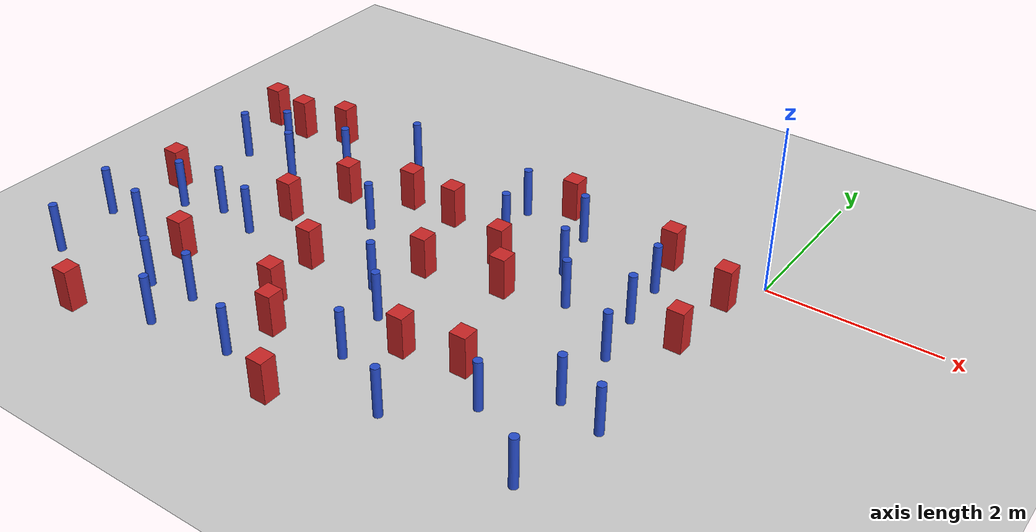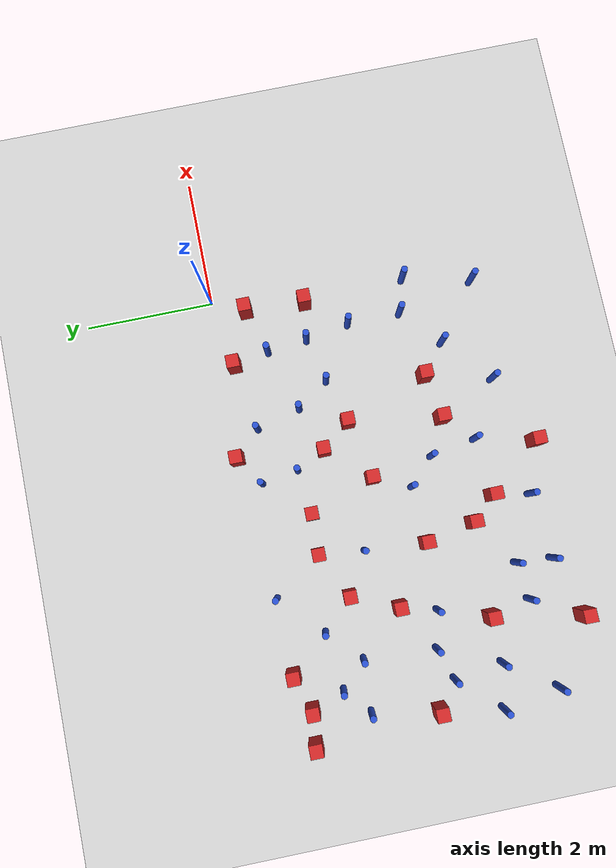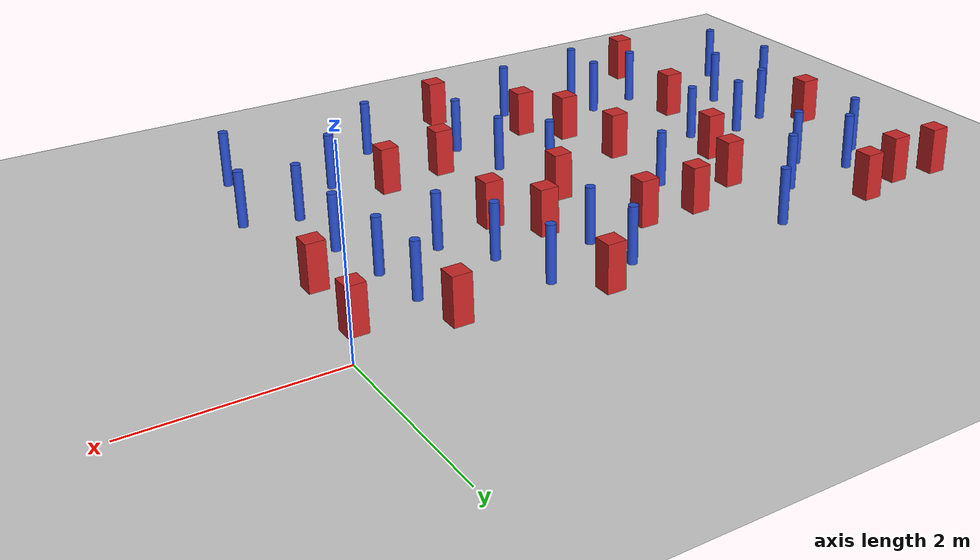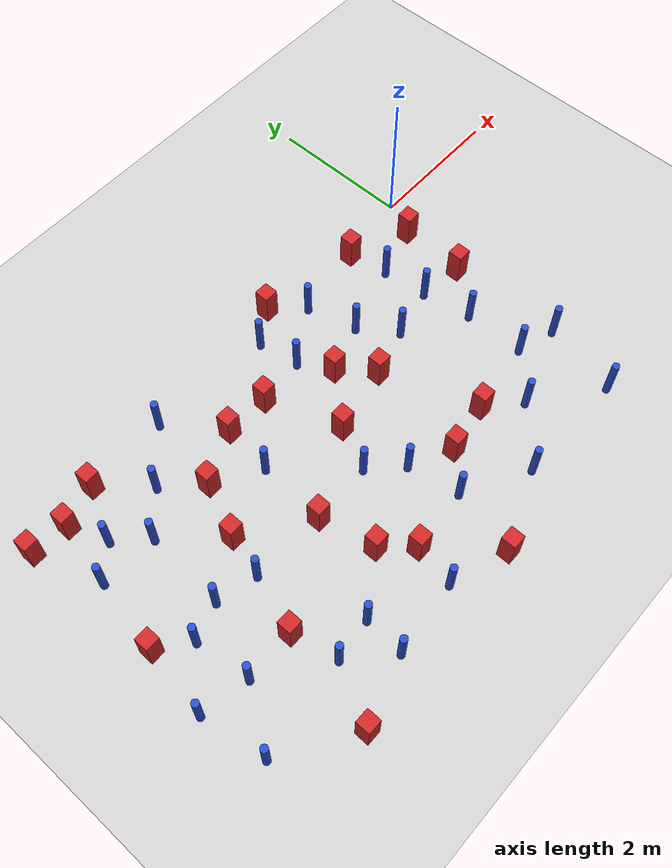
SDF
<sdf version="1.6">
 <world name="default">
  <model name="ground_plane">
   <static>1</static>
   <link name="link">
    <collision name="collision">
     <geometry><plane><normal>0 0 1</normal><size>100 100</size></plane></geometry>
     <surface><friction><ode><mu>100</mu><mu2>50</mu2></ode></friction></surface>
    </collision>
    <visual name="visual">
     <cast_shadows>0</cast_shadows>
     <geometry><plane><normal>0 0 1</normal><size>100 100</size></plane></geometry>
     <material>
      <ambient>1.0 1.0 1.0 1.0</ambient>
      <diffuse>0.8 0.8 0.8 1.0</diffuse>
      <specular>0.01 0.01 0.01 1.000000</specular>
     </material>
    </visual>
   </link>
  </model>
  <model name="pole_obstacle8">
   <static>true</static>
   <pose>-5.93918956181 -2.33999998546 -3.09024884793e-07 -7.19054271912e-07 -2.11315075144e-07 -1.93935509269e-07</pose>
   <link name="link">
    <pose>0 0 0.3 0 -0 0</pose>
    <inertial>
     <mass>1</mass>
     <inertia><ixx>0.145833</ixx><ixy>0</ixy><ixz>0</ixz><iyy>0.145833</iyy><iyz>0</iyz><izz>0.125</izz></inertia>
    </inertial>
    <collision name="collision">
     <geometry><cylinder><radius>0.05</radius><length>.6</length></cylinder></geometry>
    </collision>
    <visual name="visual">
     <geometry><cylinder><radius>0.05</radius><length>.6</length></cylinder></geometry>
     <material>
      <script><name>Gazebo/Blue</name><uri>file://media/materials/scripts/gazebo.material</uri></script>
     </material>
    </visual>
   </link>
  </model>
  <model name="pole_obstacle11">
   <static>true</static>
   <pose>-1.35940231478 -3.42042339917 -3.09024884793e-07 -7.19054271912e-07 -2.11315075132e-07 -1.93935509263e-07</pose>
   <link name="link">
    <pose>0 0 0.3 0 -0 0</pose>
    <inertial>
     <mass>1</mass>
     <inertia><ixx>0.145833</ixx><ixy>0</ixy><ixz>0</ixz><iyy>0.145833</iyy><iyz>0</iyz><izz>0.125</izz></inertia>
    </inertial>
    <collision name="collision">
     <geometry><cylinder><radius>0.05</radius><length>.6</length></cylinder></geometry>
    </collision>
    <visual name="visual">
     <geometry><cylinder><radius>0.05</radius><length>.6</length></cylinder></geometry>
     <material>
      <script><name>Gazebo/Blue</name><uri>file://media/materials/scripts/gazebo.material</uri></script>
     </material>
    </visual>
   </link>
  </model>
  <model name="square_post_obstacle9">
   <static>true</static>
   <pose>-4.35657237711 -2.52796348364 -4.36207812815e-07 3.75137919937e-06 9.77721102514e-07 2.47381364184e-05</pose>
   <link name="link">
    <pose>0 0 0.25 0 -0 0</pose>
    <inertial>
     <mass>100</mass>
     <inertia>
      <ixx>0.166667</ixx>
      <ixy>0</ixy>
      <ixz>0</ixz>
      <iyy>0.166667</iyy>
      <iyz>0</iyz>
      <izz>0.166667</izz>
     </inertia>
    </inertial>
    <collision name="collision"><geometry><box><size>.2 .2 .5</size></box></geometry></collision>
    <visual name="visual">
     <geometry><box><size>.2 .2 .5</size></box></geometry>
     <material>
      <script><name>Gazebo/Red</name><uri>file://media/materials/scripts/gazebo.material</uri></script>
     </material>
    </visual>
   </link>
  </model>
  <model name="pole_obstacle15">
   <static>true</static>
   <pose>-0.971050479498 -0.724261945991 -3.09024884793e-07 -7.19054271912e-07 -2.11315075132e-07 -1.93935509265e-07</pose>
   <link name="link">
    <pose>0 0 0.3 0 -0 0</pose>
    <inertial>
     <mass>1</mass>
     <inertia><ixx>0.145833</ixx><ixy>0</ixy><ixz>0</ixz><iyy>0.145833</iyy><iyz>0</iyz><izz>0.125</izz></inertia>
    </inertial>
    <collision name="collision">
     <geometry><cylinder><radius>0.05</radius><length>.6</length></cylinder></geometry>
    </collision>
    <visual name="visual">
     <geometry><cylinder><radius>0.05</radius><length>.6</length></cylinder></geometry>
     <material>
      <script><name>Gazebo/Blue</name><uri>file://media/materials/scripts/gazebo.material</uri></script>
     </material>
    </visual>
   </link>
  </model>
  <model name="pole_obstacle20">
   <static>true</static>
   <pose>-2.08037863311 -4.06417941965 -3.09024884793e-07 -7.19054271912e-07 -2.11315075134e-07 -1.93935509266e-07</pose>
   <link name="link">
    <pose>0 0 0.3 0 -0 0</pose>
    <inertial>
     <mass>1</mass>
     <inertia><ixx>0.145833</ixx><ixy>0</ixy><ixz>0</ixz><iyy>0.145833</iyy><iyz>0</iyz><izz>0.125</izz></inertia>
    </inertial>
    <collision name="collision">
     <geometry><cylinder><radius>0.05</radius><length>.6</length></cylinder></geometry>
    </collision>
    <visual name="visual">
     <geometry><cylinder><radius>0.05</radius><length>.6</length></cylinder></geometry>
     <material>
      <script><name>Gazebo/Blue</name><uri>file://media/materials/scripts/gazebo.material</uri></script>
     </material>
    </visual>
   </link>
  </model>
  <model name="pole_obstacle23">
   <static>true</static>
   <pose>-2.98593588228 -0.246114821247 -3.09024884848e-07 -7.19054271902e-07 -2.11315075197e-07 -1.93935509286e-07</pose>
   <link name="link">
    <pose>0 0 0.3 0 -0 0</pose>
    <inertial>
     <mass>1</mass>
     <inertia><ixx>0.145833</ixx><ixy>0</ixy><ixz>0</ixz><iyy>0.145833</iyy><iyz>0</iyz><izz>0.125</izz></inertia>
    </inertial>
    <collision name="collision">
     <geometry><cylinder><radius>0.05</radius><length>.6</length></cylinder></geometry>
    </collision>
    <visual name="visual">
     <geometry><cylinder><radius>0.05</radius><length>.6</length></cylinder></geometry>
     <material>
      <script><name>Gazebo/Blue</name><uri>file://media/materials/scripts/gazebo.material</uri></script>
     </material>
    </visual>
   </link>
  </model>
  <model name="square_post_obstacle18">
   <static>true</static>
   <pose>-3.59340045973 -0.903898061147 -4.36207812815e-07 3.75137919937e-06 9.77721102514e-07 2.47381364184e-05</pose>
   <link name="link">
    <pose>0 0 0.25 0 -0 0</pose>
    <inertial>
     <mass>100</mass>
     <inertia>
      <ixx>0.166667</ixx>
      <ixy>0</ixy>
      <ixz>0</ixz>
      <iyy>0.166667</iyy>
      <iyz>0</iyz>
      <izz>0.166667</izz>
     </inertia>
    </inertial>
    <collision name="collision"><geometry><box><size>.2 .2 .5</size></box></geometry></collision>
    <visual name="visual">
     <geometry><box><size>.2 .2 .5</size></box></geometry>
     <material>
      <script><name>Gazebo/Red</name><uri>file://media/materials/scripts/gazebo.material</uri></script>
     </material>
    </visual>
   </link>
  </model>
  <model name="pole_obstacle24">
   <static>true</static>
   <pose>-4.92612174101 -3.79418922728 -3.09024884793e-07 -7.19054271912e-07 -2.11315075144e-07 -1.93935509269e-07</pose>
   <link name="link">
    <pose>0 0 0.3 0 -0 0</pose>
    <inertial>
     <mass>1</mass>
     <inertia><ixx>0.145833</ixx><ixy>0</ixy><ixz>0</ixz><iyy>0.145833</iyy><iyz>0</iyz><izz>0.125</izz></inertia>
    </inertial>
    <collision name="collision">
     <geometry><cylinder><radius>0.05</radius><length>.6</length></cylinder></geometry>
    </collision>
    <visual name="visual">
     <geometry><cylinder><radius>0.05</radius><length>.6</length></cylinder></geometry>
     <material>
      <script><name>Gazebo/Blue</name><uri>file://media/materials/scripts/gazebo.material</uri></script>
     </material>
    </visual>
   </link>
  </model>
  <model name="pole_obstacle28">
   <static>true</static>
   <pose>-5.37671411241 -0.752074949718 -3.09024884793e-07 -7.19054271912e-07 -2.11315075134e-07 -1.93935509265e-07</pose>
   <link name="link">
    <pose>0 0 0.3 0 -0 0</pose>
    <inertial>
     <mass>1</mass>
     <inertia><ixx>0.145833</ixx><ixy>0</ixy><ixz>0</ixz><iyy>0.145833</iyy><iyz>0</iyz><izz>0.125</izz></inertia>
    </inertial>
    <collision name="collision">
     <geometry><cylinder><radius>0.05</radius><length>.6</length></cylinder></geometry>
    </collision>
    <visual name="visual">
     <geometry><cylinder><radius>0.05</radius><length>.6</length></cylinder></geometry>
     <material>
      <script><name>Gazebo/Blue</name><uri>file://media/materials/scripts/gazebo.material</uri></script>
     </material>
    </visual>
   </link>
  </model>
  <model name="square_post_obstacle22">
   <static>true</static>
   <pose>-0.294631532423 -1.43798878505 -4.36207812815e-07 3.75137919937e-06 9.77721102514e-07 2.47381364184e-05</pose>
   <link name="link">
    <pose>0 0 0.25 0 -0 0</pose>
    <inertial>
     <mass>100</mass>
     <inertia>
      <ixx>0.166667</ixx>
      <ixy>0</ixy>
      <ixz>0</ixz>
      <iyy>0.166667</iyy>
      <iyz>0</iyz>
      <izz>0.166667</izz>
     </inertia>
    </inertial>
    <collision name="collision"><geometry><box><size>.2 .2 .5</size></box></geometry></collision>
    <visual name="visual">
     <geometry><box><size>.2 .2 .5</size></box></geometry>
     <material>
      <script><name>Gazebo/Red</name><uri>file://media/materials/scripts/gazebo.material</uri></script>
     </material>
    </visual>
   </link>
  </model>
  <model name="pole_obstacle37">
   <static>true</static>
   <pose>-2.9515299949 -3.58960341837 -3.09024884793e-07 -7.19054271912e-07 -2.11315075144e-07 -1.93935509271e-07</pose>
   <link name="link">
    <pose>0 0 0.3 0 -0 0</pose>
    <inertial>
     <mass>1</mass>
     <inertia><ixx>0.145833</ixx><ixy>0</ixy><ixz>0</ixz><iyy>0.145833</iyy><iyz>0</iyz><izz>0.125</izz></inertia>
    </inertial>
    <collision name="collision">
     <geometry><cylinder><radius>0.05</radius><length>.6</length></cylinder></geometry>
    </collision>
    <visual name="visual">
     <geometry><cylinder><radius>0.05</radius><length>.6</length></cylinder></geometry>
     <material>
      <script><name>Gazebo/Blue</name><uri>file://media/materials/scripts/gazebo.material</uri></script>
     </material>
    </visual>
   </link>
  </model>
  <model name="pole_obstacle46">
   <static>true</static>
   <pose>-6.42709870268 -2.50777887433 -3.09024884793e-07 -7.19054271912e-07 -2.11315075144e-07 -1.93935509269e-07</pose>
   <link name="link">
    <pose>0 0 0.3 0 -0 0</pose>
    <inertial>
     <mass>1</mass>
     <inertia><ixx>0.145833</ixx><ixy>0</ixy><ixz>0</ixz><iyy>0.145833</iyy><iyz>0</iyz><izz>0.125</izz></inertia>
    </inertial>
    <collision name="collision">
     <geometry><cylinder><radius>0.05</radius><length>.6</length></cylinder></geometry>
    </collision>
    <visual name="visual">
     <geometry><cylinder><radius>0.05</radius><length>.6</length></cylinder></geometry>
     <material>
      <script><name>Gazebo/Blue</name><uri>file://media/materials/scripts/gazebo.material</uri></script>
     </material>
    </visual>
   </link>
  </model>
  <model name="pole_obstacle49">
   <static>true</static>
   <pose>-0.764590414519 -2.87432632808 -3.09024884793e-07 -7.19054271912e-07 -2.11315075129e-07 -1.93935509263e-07</pose>
   <link name="link">
    <pose>0 0 0.3 0 -0 0</pose>
    <inertial>
     <mass>1</mass>
     <inertia><ixx>0.145833</ixx><ixy>0</ixy><ixz>0</ixz><iyy>0.145833</iyy><iyz>0</iyz><izz>0.125</izz></inertia>
    </inertial>
    <collision name="collision">
     <geometry><cylinder><radius>0.05</radius><length>.6</length></cylinder></geometry>
    </collision>
    <visual name="visual">
     <geometry><cylinder><radius>0.05</radius><length>.6</length></cylinder></geometry>
     <material>
      <script><name>Gazebo/Blue</name><uri>file://media/materials/scripts/gazebo.material</uri></script>
     </material>
    </visual>
   </link>
  </model>
  <model name="pole_obstacle50">
   <static>true</static>
   <pose>-2.89263243669 -0.820374511175 -3.09024884793e-07 -7.19054271913e-07 -2.1131507512e-07 -1.93935509259e-07</pose>
   <link name="link">
    <pose>0 0 0.3 0 -0 0</pose>
    <inertial>
     <mass>1</mass>
     <inertia><ixx>0.145833</ixx><ixy>0</ixy><ixz>0</ixz><iyy>0.145833</iyy><iyz>0</iyz><izz>0.125</izz></inertia>
    </inertial>
    <collision name="collision">
     <geometry><cylinder><radius>0.05</radius><length>.6</length></cylinder></geometry>
    </collision>
    <visual name="visual">
     <geometry><cylinder><radius>0.05</radius><length>.6</length></cylinder></geometry>
     <material>
      <script><name>Gazebo/Blue</name><uri>file://media/materials/scripts/gazebo.material</uri></script>
     </material>
    </visual>
   </link>
  </model>
  <model name="pole_obstacle52">
   <static>true</static>
   <pose>-3.48467691996 -2.4865860605 -3.09024884793e-07 -7.19054271912e-07 -2.11315075128e-07 -1.93935509262e-07</pose>
   <link name="link">
    <pose>0 0 0.3 0 -0 0</pose>
    <inertial>
     <mass>1</mass>
     <inertia><ixx>0.145833</ixx><ixy>0</ixy><ixz>0</ixz><iyy>0.145833</iyy><iyz>0</iyz><izz>0.125</izz></inertia>
    </inertial>
    <collision name="collision">
     <geometry><cylinder><radius>0.05</radius><length>.6</length></cylinder></geometry>
    </collision>
    <visual name="visual">
     <geometry><cylinder><radius>0.05</radius><length>.6</length></cylinder></geometry>
     <material>
      <script><name>Gazebo/Blue</name><uri>file://media/materials/scripts/gazebo.material</uri></script>
     </material>
    </visual>
   </link>
  </model>
  <model name="square_post_obstacle41">
   <static>true</static>
   <pose>-5.22849746253 -1.92447781131 -4.36207812815e-07 3.75137919937e-06 9.77721102514e-07 2.47381364184e-05</pose>
   <link name="link">
    <pose>0 0 0.25 0 -0 0</pose>
    <inertial>
     <mass>100</mass>
     <inertia>
      <ixx>0.166667</ixx>
      <ixy>0</ixy>
      <ixz>0</ixz>
      <iyy>0.166667</iyy>
      <iyz>0</iyz>
      <izz>0.166667</izz>
     </inertia>
    </inertial>
    <collision name="collision"><geometry><box><size>.2 .2 .5</size></box></geometry></collision>
    <visual name="visual">
     <geometry><box><size>.2 .2 .5</size></box></geometry>
     <material>
      <script><name>Gazebo/Red</name><uri>file://media/materials/scripts/gazebo.material</uri></script>
     </material>
    </visual>
   </link>
  </model>
  <model name="square_post_obstacle42">
   <static>true</static>
   <pose>-2.30035690783 -1.72313318264 -4.36207812815e-07 3.75137919937e-06 9.77721102514e-07 2.47381364184e-05</pose>
   <link name="link">
    <pose>0 0 0.25 0 -0 0</pose>
    <inertial>
     <mass>100</mass>
     <inertia>
      <ixx>0.166667</ixx>
      <ixy>0</ixy>
      <ixz>0</ixz>
      <iyy>0.166667</iyy>
      <iyz>0</iyz>
      <izz>0.166667</izz>
     </inertia>
    </inertial>
    <collision name="collision"><geometry><box><size>.2 .2 .5</size></box></geometry></collision>
    <visual name="visual">
     <geometry><box><size>.2 .2 .5</size></box></geometry>
     <material>
      <script><name>Gazebo/Red</name><uri>file://media/materials/scripts/gazebo.material</uri></script>
     </material>
    </visual>
   </link>
  </model>
  <model name="pole_obstacle61">
   <static>true</static>
   <pose>-1.95403019603 -1.02890250495 -3.09024884793e-07 -7.19054271912e-07 -2.11315075144e-07 -1.93935509271e-07</pose>
   <link name="link">
    <pose>0 0 0.3 0 -0 0</pose>
    <inertial>
     <mass>1</mass>
     <inertia><ixx>0.145833</ixx><ixy>0</ixy><ixz>0</ixz><iyy>0.145833</iyy><iyz>0</iyz><izz>0.125</izz></inertia>
    </inertial>
    <collision name="collision">
     <geometry><cylinder><radius>0.05</radius><length>.6</length></cylinder></geometry>
    </collision>
    <visual name="visual">
     <geometry><cylinder><radius>0.05</radius><length>.6</length></cylinder></geometry>
     <material>
      <script><name>Gazebo/Blue</name><uri>file://media/materials/scripts/gazebo.material</uri></script>
     </material>
    </visual>
   </link>
  </model>
  <model name="square_post_obstacle47">
   <static>true</static>
   <pose>-6.45440543296 -0.343560548428 -4.36207812815e-07 3.75137919937e-06 9.77721102514e-07 2.47381364184e-05</pose>
   <link name="link">
    <pose>0 0 0.25 0 -0 0</pose>
    <inertial>
     <mass>100</mass>
     <inertia>
      <ixx>0.166667</ixx>
      <ixy>0</ixy>
      <ixz>0</ixz>
      <iyy>0.166667</iyy>
      <iyz>0</iyz>
      <izz>0.166667</izz>
     </inertia>
    </inertial>
    <collision name="collision"><geometry><box><size>.2 .2 .5</size></box></geometry></collision>
    <visual name="visual">
     <geometry><box><size>.2 .2 .5</size></box></geometry>
     <material>
      <script><name>Gazebo/Red</name><uri>file://media/materials/scripts/gazebo.material</uri></script>
     </material>
    </visual>
   </link>
  </model>
  <model name="square_post_obstacle61">
   <static>true</static>
   <pose>-5.88075636366 -4.6213837891 -4.36207812815e-07 3.75137919937e-06 9.77721102514e-07 2.47381364184e-05</pose>
   <link name="link">
    <pose>0 0 0.25 0 -0 0</pose>
    <inertial>
     <mass>100</mass>
     <inertia>
      <ixx>0.166667</ixx>
      <ixy>0</ixy>
      <ixz>0</ixz>
      <iyy>0.166667</iyy>
      <iyz>0</iyz>
      <izz>0.166667</izz>
     </inertia>
    </inertial>
    <collision name="collision"><geometry><box><size>.2 .2 .5</size></box></geometry></collision>
    <visual name="visual">
     <geometry><box><size>.2 .2 .5</size></box></geometry>
     <material>
      <script><name>Gazebo/Red</name><uri>file://media/materials/scripts/gazebo.material</uri></script>
     </material>
    </visual>
   </link>
  </model>
  <model name="pole_obstacle83">
   <static>true</static>
   <pose>-6.33340785094 -3.25890754644 -3.09024884793e-07 -7.19054271912e-07 -2.11315075144e-07 -1.93935509269e-07</pose>
   <link name="link">
    <pose>0 0 0.3 0 -0 0</pose>
    <inertial>
     <mass>1</mass>
     <inertia><ixx>0.145833</ixx><ixy>0</ixy><ixz>0</ixz><iyy>0.145833</iyy><iyz>0</iyz><izz>0.125</izz></inertia>
    </inertial>
    <collision name="collision">
     <geometry><cylinder><radius>0.05</radius><length>.6</length></cylinder></geometry>
    </collision>
    <visual name="visual">
     <geometry><cylinder><radius>0.05</radius><length>.6</length></cylinder></geometry>
     <material>
      <script><name>Gazebo/Blue</name><uri>file://media/materials/scripts/gazebo.material</uri></script>
     </material>
    </visual>
   </link>
  </model>
  <model name="pole_obstacle85">
   <static>true</static>
   <pose>-6.65802091211 -1.19038526827 -3.09024884793e-07 -7.19054271912e-07 -2.11315075124e-07 -1.93935509261e-07</pose>
   <link name="link">
    <pose>0 0 0.3 0 -0 0</pose>
    <inertial>
     <mass>1</mass>
     <inertia><ixx>0.145833</ixx><ixy>0</ixy><ixz>0</ixz><iyy>0.145833</iyy><iyz>0</iyz><izz>0.125</izz></inertia>
    </inertial>
    <collision name="collision">
     <geometry><cylinder><radius>0.05</radius><length>.6</length></cylinder></geometry>
    </collision>
    <visual name="visual">
     <geometry><cylinder><radius>0.05</radius><length>.6</length></cylinder></geometry>
     <material>
      <script><name>Gazebo/Blue</name><uri>file://media/materials/scripts/gazebo.material</uri></script>
     </material>
    </visual>
   </link>
  </model>
  <model name="square_post_obstacle73">
   <static>true</static>
   <pose>-2.53187345636 0.0550247756761 -4.36207812815e-07 3.75137919937e-06 9.77721102514e-07 2.47381364184e-05</pose>
   <link name="link">
    <pose>0 0 0.25 0 -0 0</pose>
    <inertial>
     <mass>100</mass>
     <inertia>
      <ixx>0.166667</ixx>
      <ixy>0</ixy>
      <ixz>0</ixz>
      <iyy>0.166667</iyy>
      <iyz>0</iyz>
      <izz>0.166667</izz>
     </inertia>
    </inertial>
    <collision name="collision"><geometry><box><size>.2 .2 .5</size></box></geometry></collision>
    <visual name="visual">
     <geometry><box><size>.2 .2 .5</size></box></geometry>
     <material>
      <script><name>Gazebo/Red</name><uri>file://media/materials/scripts/gazebo.material</uri></script>
     </material>
    </visual>
   </link>
  </model>
  <model name="pole_obstacle88">
   <static>true</static>
   <pose>-5.87193337121 -1.2317427882 -3.09024884793e-07 -7.19054271912e-07 -2.11315075124e-07 -1.93935509261e-07</pose>
   <link name="link">
    <pose>0 0 0.3 0 -0 0</pose>
    <inertial>
     <mass>1</mass>
     <inertia><ixx>0.145833</ixx><ixy>0</ixy><ixz>0</ixz><iyy>0.145833</iyy><iyz>0</iyz><izz>0.125</izz></inertia>
    </inertial>
    <collision name="collision">
     <geometry><cylinder><radius>0.05</radius><length>.6</length></cylinder></geometry>
    </collision>
    <visual name="visual">
     <geometry><cylinder><radius>0.05</radius><length>.6</length></cylinder></geometry>
     <material>
      <script><name>Gazebo/Blue</name><uri>file://media/materials/scripts/gazebo.material</uri></script>
     </material>
    </visual>
   </link>
  </model>
  <model name="square_post_obstacle82">
   <static>true</static>
   <pose>-3.15537683944 -4.49967154887 -4.36207812815e-07 3.75137919937e-06 9.77721102514e-07 2.47381364184e-05</pose>
   <link name="link">
    <pose>0 0 0.25 0 -0 0</pose>
    <inertial>
     <mass>100</mass>
     <inertia>
      <ixx>0.166667</ixx>
      <ixy>0</ixy>
      <ixz>0</ixz>
      <iyy>0.166667</iyy>
      <iyz>0</iyz>
      <izz>0.166667</izz>
     </inertia>
    </inertial>
    <collision name="collision"><geometry><box><size>.2 .2 .5</size></box></geometry></collision>
    <visual name="visual">
     <geometry><box><size>.2 .2 .5</size></box></geometry>
     <material>
      <script><name>Gazebo/Red</name><uri>file://media/materials/scripts/gazebo.material</uri></script>
     </material>
    </visual>
   </link>
  </model>
  <model name="square_post_obstacle83">
   <static>true</static>
   <pose>-3.84784912123 -3.67685127708 -4.36207812815e-07 3.75137919937e-06 9.77721102514e-07 2.47381364184e-05</pose>
   <link name="link">
    <pose>0 0 0.25 0 -0 0</pose>
    <inertial>
     <mass>100</mass>
     <inertia>
      <ixx>0.166667</ixx>
      <ixy>0</ixy>
      <ixz>0</ixz>
      <iyy>0.166667</iyy>
      <iyz>0</iyz>
      <izz>0.166667</izz>
     </inertia>
    </inertial>
    <collision name="collision"><geometry><box><size>.2 .2 .5</size></box></geometry></collision>
    <visual name="visual">
     <geometry><box><size>.2 .2 .5</size></box></geometry>
     <material>
      <script><name>Gazebo/Red</name><uri>file://media/materials/scripts/gazebo.material</uri></script>
     </material>
    </visual>
   </link>
  </model>
  <model name="pole_obstacle106">
   <static>true</static>
   <pose>-5.38096220355 -2.47245177304 -3.09024884793e-07 -7.19054271912e-07 -2.11315075144e-07 -1.93935509269e-07</pose>
   <link name="link">
    <pose>0 0 0.3 0 -0 0</pose>
    <inertial>
     <mass>1</mass>
     <inertia><ixx>0.145833</ixx><ixy>0</ixy><ixz>0</ixz><iyy>0.145833</iyy><iyz>0</iyz><izz>0.125</izz></inertia>
    </inertial>
    <collision name="collision">
     <geometry><cylinder><radius>0.05</radius><length>.6</length></cylinder></geometry>
    </collision>
    <visual name="visual">
     <geometry><cylinder><radius>0.05</radius><length>.6</length></cylinder></geometry>
     <material>
      <script><name>Gazebo/Blue</name><uri>file://media/materials/scripts/gazebo.material</uri></script>
     </material>
    </visual>
   </link>
  </model>
  <model name="pole_obstacle109">
   <static>true</static>
   <pose>-6.84099089575 -4.00560083769 -3.09024884793e-07 -7.19054271911e-07 -2.11315075159e-07 -1.93935509277e-07</pose>
   <link name="link">
    <pose>0 0 0.3 0 -0 0</pose>
    <inertial>
     <mass>1</mass>
     <inertia><ixx>0.145833</ixx><ixy>0</ixy><ixz>0</ixz><iyy>0.145833</iyy><iyz>0</iyz><izz>0.125</izz></inertia>
    </inertial>
    <collision name="collision">
     <geometry><cylinder><radius>0.05</radius><length>.6</length></cylinder></geometry>
    </collision>
    <visual name="visual">
     <geometry><cylinder><radius>0.05</radius><length>.6</length></cylinder></geometry>
     <material>
      <script><name>Gazebo/Blue</name><uri>file://media/materials/scripts/gazebo.material</uri></script>
     </material>
    </visual>
   </link>
  </model>
  <model name="square_post_obstacle103">
   <static>true</static>
   <pose>-3.22933382615 -1.91803650348 -4.36207812815e-07 3.75137919937e-06 9.77721102514e-07 2.47381364184e-05</pose>
   <link name="link">
    <pose>0 0 0.25 0 -0 0</pose>
    <inertial>
     <mass>100</mass>
     <inertia>
      <ixx>0.166667</ixx>
      <ixy>0</ixy>
      <ixz>0</ixz>
      <iyy>0.166667</iyy>
      <iyz>0</iyz>
      <izz>0.166667</izz>
     </inertia>
    </inertial>
    <collision name="collision"><geometry><box><size>.2 .2 .5</size></box></geometry></collision>
    <visual name="visual">
     <geometry><box><size>.2 .2 .5</size></box></geometry>
     <material>
      <script><name>Gazebo/Red</name><uri>file://media/materials/scripts/gazebo.material</uri></script>
     </material>
    </visual>
   </link>
  </model>
  <model name="square_post_obstacle124">
   <static>true</static>
   <pose>-5.63739592643 -3.24618266897 -4.36207812815e-07 3.75137919937e-06 9.77721102514e-07 2.47381364184e-05</pose>
   <link name="link">
    <pose>0 0 0.25 0 -0 0</pose>
    <inertial>
     <mass>100</mass>
     <inertia>
      <ixx>0.166667</ixx>
      <ixy>0</ixy>
      <ixz>0</ixz>
      <iyy>0.166667</iyy>
      <iyz>0</iyz>
      <izz>0.166667</izz>
     </inertia>
    </inertial>
    <collision name="collision"><geometry><box><size>.2 .2 .5</size></box></geometry></collision>
    <visual name="visual">
     <geometry><box><size>.2 .2 .5</size></box></geometry>
     <material>
      <script><name>Gazebo/Red</name><uri>file://media/materials/scripts/gazebo.material</uri></script>
     </material>
    </visual>
   </link>
  </model>
  <model name="pole_obstacle136">
   <static>true</static>
   <pose>-0.472587012851 -4.08303991902 -3.09024884793e-07 -7.19054271912e-07 -2.11315075131e-07 -1.93935509262e-07</pose>
   <link name="link">
    <pose>0 0 0.3 0 -0 0</pose>
    <inertial>
     <mass>1</mass>
     <inertia><ixx>0.145833</ixx><ixy>0</ixy><ixz>0</ixz><iyy>0.145833</iyy><iyz>0</iyz><izz>0.125</izz></inertia>
    </inertial>
    <collision name="collision">
     <geometry><cylinder><radius>0.05</radius><length>.6</length></cylinder></geometry>
    </collision>
    <visual name="visual">
     <geometry><cylinder><radius>0.05</radius><length>.6</length></cylinder></geometry>
     <material>
      <script><name>Gazebo/Blue</name><uri>file://media/materials/scripts/gazebo.material</uri></script>
     </material>
    </visual>
   </link>
  </model>
  <model name="square_post_obstacle134">
   <static>true</static>
   <pose>-2.6581494894 -1.27359926055 -4.36207812815e-07 3.75137919937e-06 9.77721102514e-07 2.47381364184e-05</pose>
   <link name="link">
    <pose>0 0 0.25 0 -0 0</pose>
    <inertial>
     <mass>100</mass>
     <inertia>
      <ixx>0.166667</ixx>
      <ixy>0</ixy>
      <ixz>0</ixz>
      <iyy>0.166667</iyy>
      <iyz>0</iyz>
      <izz>0.166667</izz>
     </inertia>
    </inertial>
    <collision name="collision"><geometry><box><size>.2 .2 .5</size></box></geometry></collision>
    <visual name="visual">
     <geometry><box><size>.2 .2 .5</size></box></geometry>
     <material>
      <script><name>Gazebo/Red</name><uri>file://media/materials/scripts/gazebo.material</uri></script>
     </material>
    </visual>
   </link>
  </model>
  <model name="pole_obstacle149">
   <static>true</static>
   <pose>-2.13962576542 -0.336081911591 -3.09024884793e-07 -7.19054271912e-07 -2.1131507512e-07 -1.93935509259e-07</pose>
   <link name="link">
    <pose>0 0 0.3 0 -0 0</pose>
    <inertial>
     <mass>1</mass>
     <inertia><ixx>0.145833</ixx><ixy>0</ixy><ixz>0</ixz><iyy>0.145833</iyy><iyz>0</iyz><izz>0.125</izz></inertia>
    </inertial>
    <collision name="collision">
     <geometry><cylinder><radius>0.05</radius><length>.6</length></cylinder></geometry>
    </collision>
    <visual name="visual">
     <geometry><cylinder><radius>0.05</radius><length>.6</length></cylinder></geometry>
     <material>
      <script><name>Gazebo/Blue</name><uri>file://media/materials/scripts/gazebo.material</uri></script>
     </material>
    </visual>
   </link>
  </model>
  <model name="square_post_obstacle142">
   <static>true</static>
   <pose>-6.83343139462 -2.19796313709 -4.36207812815e-07 3.75137919937e-06 9.77721102514e-07 2.47381364184e-05</pose>
   <link name="link">
    <pose>0 0 0.25 0 -0 0</pose>
    <inertial>
     <mass>100</mass>
     <inertia>
      <ixx>0.166667</ixx>
      <ixy>0</ixy>
      <ixz>0</ixz>
      <iyy>0.166667</iyy>
      <iyz>0</iyz>
      <izz>0.166667</izz>
     </inertia>
    </inertial>
    <collision name="collision"><geometry><box><size>.2 .2 .5</size></box></geometry></collision>
    <visual name="visual">
     <geometry><box><size>.2 .2 .5</size></box></geometry>
     <material>
      <script><name>Gazebo/Red</name><uri>file://media/materials/scripts/gazebo.material</uri></script>
     </material>
    </visual>
   </link>
  </model>
  <model name="pole_obstacle150">
   <static>true</static>
   <pose>-1.60444603574 -1.52423088776 -3.09024884793e-07 -7.19054271912e-07 -2.1131507513e-07 -1.93935509263e-07</pose>
   <link name="link">
    <pose>0 0 0.3 0 -0 0</pose>
    <inertial>
     <mass>1</mass>
     <inertia><ixx>0.145833</ixx><ixy>0</ixy><ixz>0</ixz><iyy>0.145833</iyy><iyz>0</iyz><izz>0.125</izz></inertia>
    </inertial>
    <collision name="collision">
     <geometry><cylinder><radius>0.05</radius><length>.6</length></cylinder></geometry>
    </collision>
    <visual name="visual">
     <geometry><cylinder><radius>0.05</radius><length>.6</length></cylinder></geometry>
     <material>
      <script><name>Gazebo/Blue</name><uri>file://media/materials/scripts/gazebo.material</uri></script>
     </material>
    </visual>
   </link>
  </model>
  <model name="square_post_obstacle150">
   <static>true</static>
   <pose>-1.82367919163 -3.04040148087 -4.36207812815e-07 3.75137919937e-06 9.77721102514e-07 2.47381364184e-05</pose>
   <link name="link">
    <pose>0 0 0.25 0 -0 0</pose>
    <inertial>
     <mass>100</mass>
     <inertia>
      <ixx>0.166667</ixx>
      <ixy>0</ixy>
      <ixz>0</ixz>
      <iyy>0.166667</iyy>
      <iyz>0</iyz>
      <izz>0.166667</izz>
     </inertia>
    </inertial>
    <collision name="collision"><geometry><box><size>.2 .2 .5</size></box></geometry></collision>
    <visual name="visual">
     <geometry><box><size>.2 .2 .5</size></box></geometry>
     <material>
      <script><name>Gazebo/Red</name><uri>file://media/materials/scripts/gazebo.material</uri></script>
     </material>
    </visual>
   </link>
  </model>
  <model name="square_post_obstacle151">
   <static>true</static>
   <pose>-4.92003546926 -1.2196042111 -4.36207812815e-07 3.75137919937e-06 9.77721102514e-07 2.47381364184e-05</pose>
   <link name="link">
    <pose>0 0 0.25 0 -0 0</pose>
    <inertial>
     <mass>100</mass>
     <inertia>
      <ixx>0.166667</ixx>
      <ixy>0</ixy>
      <ixz>0</ixz>
      <iyy>0.166667</iyy>
      <iyz>0</iyz>
      <izz>0.166667</izz>
     </inertia>
    </inertial>
    <collision name="collision"><geometry><box><size>.2 .2 .5</size></box></geometry></collision>
    <visual name="visual">
     <geometry><box><size>.2 .2 .5</size></box></geometry>
     <material>
      <script><name>Gazebo/Red</name><uri>file://media/materials/scripts/gazebo.material</uri></script>
     </material>
    </visual>
   </link>
  </model>
  <model name="square_post_obstacle156">
   <static>true</static>
   <pose>-4.19465372901 -3.29482332474 -4.36207812815e-07 3.75137919937e-06 9.77721102514e-07 2.47381364184e-05</pose>
   <link name="link">
    <pose>0 0 0.25 0 -0 0</pose>
    <inertial>
     <mass>100</mass>
     <inertia>
      <ixx>0.166667</ixx>
      <ixy>0</ixy>
      <ixz>0</ixz>
      <iyy>0.166667</iyy>
      <iyz>0</iyz>
      <izz>0.166667</izz>
     </inertia>
    </inertial>
    <collision name="collision"><geometry><box><size>.2 .2 .5</size></box></geometry></collision>
    <visual name="visual">
     <geometry><box><size>.2 .2 .5</size></box></geometry>
     <material>
      <script><name>Gazebo/Red</name><uri>file://media/materials/scripts/gazebo.material</uri></script>
     </material>
    </visual>
   </link>
  </model>
  <model name="square_post_obstacle158">
   <static>true</static>
   <pose>-4.21633975732 -0.882855180653 -4.36207812815e-07 3.75137919937e-06 9.77721102514e-07 2.47381364184e-05</pose>
   <link name="link">
    <pose>0 0 0.25 0 -0 0</pose>
    <inertial>
     <mass>100</mass>
     <inertia>
      <ixx>0.166667</ixx>
      <ixy>0</ixy>
      <ixz>0</ixz>
      <iyy>0.166667</iyy>
      <iyz>0</iyz>
      <izz>0.166667</izz>
     </inertia>
    </inertial>
    <collision name="collision"><geometry><box><size>.2 .2 .5</size></box></geometry></collision>
    <visual name="visual">
     <geometry><box><size>.2 .2 .5</size></box></geometry>
     <material>
      <script><name>Gazebo/Red</name><uri>file://media/materials/scripts/gazebo.material</uri></script>
     </material>
    </visual>
   </link>
  </model>
  <model name="pole_obstacle174">
   <static>true</static>
   <pose>-4.96441970653 -4.34282004801 -3.09024884793e-07 -7.19054271911e-07 -2.1131507516e-07 -1.93935509277e-07</pose>
   <link name="link">
    <pose>0 0 0.3 0 -0 0</pose>
    <inertial>
     <mass>1</mass>
     <inertia><ixx>0.145833</ixx><ixy>0</ixy><ixz>0</ixz><iyy>0.145833</iyy><iyz>0</iyz><izz>0.125</izz></inertia>
    </inertial>
    <collision name="collision">
     <geometry><cylinder><radius>0.05</radius><length>.6</length></cylinder></geometry>
    </collision>
    <visual name="visual">
     <geometry><cylinder><radius>0.05</radius><length>.6</length></cylinder></geometry>
     <material>
      <script><name>Gazebo/Blue</name><uri>file://media/materials/scripts/gazebo.material</uri></script>
     </material>
    </visual>
   </link>
  </model>
  <model name="square_post_obstacle172">
   <static>true</static>
   <pose>-6.96403574385 -0.290770938319 -4.36207812815e-07 3.75137919937e-06 9.77721102514e-07 2.47381364184e-05</pose>
   <link name="link">
    <pose>0 0 0.25 0 -0 0</pose>
    <inertial>
     <mass>100</mass>
     <inertia>
      <ixx>0.166667</ixx>
      <ixy>0</ixy>
      <ixz>0</ixz>
      <iyy>0.166667</iyy>
      <iyz>0</iyz>
      <izz>0.166667</izz>
     </inertia>
    </inertial>
    <collision name="collision"><geometry><box><size>.2 .2 .5</size></box></geometry></collision>
    <visual name="visual">
     <geometry><box><size>.2 .2 .5</size></box></geometry>
     <material>
      <script><name>Gazebo/Red</name><uri>file://media/materials/scripts/gazebo.material</uri></script>
     </material>
    </visual>
   </link>
  </model>
  <model name="pole_obstacle175">
   <static>true</static>
   <pose>-3.94906643487 -4.23739556475 -3.09024884793e-07 -7.19054271912e-07 -2.11315075134e-07 -1.93935509266e-07</pose>
   <link name="link">
    <pose>0 0 0.3 0 -0 0</pose>
    <inertial>
     <mass>1</mass>
     <inertia><ixx>0.145833</ixx><ixy>0</ixy><ixz>0</ixz><iyy>0.145833</iyy><iyz>0</iyz><izz>0.125</izz></inertia>
    </inertial>
    <collision name="collision">
     <geometry><cylinder><radius>0.05</radius><length>.6</length></cylinder></geometry>
    </collision>
    <visual name="visual">
     <geometry><cylinder><radius>0.05</radius><length>.6</length></cylinder></geometry>
     <material>
      <script><name>Gazebo/Blue</name><uri>file://media/materials/scripts/gazebo.material</uri></script>
     </material>
    </visual>
   </link>
  </model>
  <model name="square_post_obstacle174">
   <static>true</static>
   <pose>-5.90180215205 -0.161952301234 -4.36207812815e-07 3.75137919937e-06 9.77721102514e-07 2.47381364184e-05</pose>
   <link name="link">
    <pose>0 0 0.25 0 -0 0</pose>
    <inertial>
     <mass>100</mass>
     <inertia>
      <ixx>0.166667</ixx>
      <ixy>0</ixy>
      <ixz>0</ixz>
      <iyy>0.166667</iyy>
      <iyz>0</iyz>
      <izz>0.166667</izz>
     </inertia>
    </inertial>
    <collision name="collision"><geometry><box><size>.2 .2 .5</size></box></geometry></collision>
    <visual name="visual">
     <geometry><box><size>.2 .2 .5</size></box></geometry>
     <material>
      <script><name>Gazebo/Red</name><uri>file://media/materials/scripts/gazebo.material</uri></script>
     </material>
    </visual>
   </link>
  </model>
  <model name="pole_obstacle179">
   <static>true</static>
   <pose>-0.228739848141 -3.028899453 -3.09024884848e-07 -7.19054271902e-07 -2.11315075205e-07 -1.93935509288e-07</pose>
   <link name="link">
    <pose>0 0 0.3 0 -0 0</pose>
    <inertial>
     <mass>1</mass>
     <inertia><ixx>0.145833</ixx><ixy>0</ixy><ixz>0</ixz><iyy>0.145833</iyy><iyz>0</iyz><izz>0.125</izz></inertia>
    </inertial>
    <collision name="collision">
     <geometry><cylinder><radius>0.05</radius><length>.6</length></cylinder></geometry>
    </collision>
    <visual name="visual">
     <geometry><cylinder><radius>0.05</radius><length>.6</length></cylinder></geometry>
     <material>
      <script><name>Gazebo/Blue</name><uri>file://media/materials/scripts/gazebo.material</uri></script>
     </material>
    </visual>
   </link>
  </model>
  <model name="pole_obstacle180">
   <static>true</static>
   <pose>-4.73974636405 -0.131971968078 -3.09024884793e-07 -7.19054271912e-07 -2.11315075119e-07 -1.93935509258e-07</pose>
   <link name="link">
    <pose>0 0 0.3 0 -0 0</pose>
    <inertial>
     <mass>1</mass>
     <inertia><ixx>0.145833</ixx><ixy>0</ixy><ixz>0</ixz><iyy>0.145833</iyy><iyz>0</iyz><izz>0.125</izz></inertia>
    </inertial>
    <collision name="collision">
     <geometry><cylinder><radius>0.05</radius><length>.6</length></cylinder></geometry>
    </collision>
    <visual name="visual">
     <geometry><cylinder><radius>0.05</radius><length>.6</length></cylinder></geometry>
     <material>
      <script><name>Gazebo/Blue</name><uri>file://media/materials/scripts/gazebo.material</uri></script>
     </material>
    </visual>
   </link>
  </model>
  <model name="pole_obstacle187">
   <static>true</static>
   <pose>-0.899838998986 -1.3546548984 -3.09024884793e-07 -7.19054271912e-07 -2.11315075135e-07 -1.93935509266e-07</pose>
   <link name="link">
    <pose>0 0 0.3 0 -0 0</pose>
    <inertial>
     <mass>1</mass>
     <inertia><ixx>0.145833</ixx><ixy>0</ixy><ixz>0</ixz><iyy>0.145833</iyy><iyz>0</iyz><izz>0.125</izz></inertia>
    </inertial>
    <collision name="collision">
     <geometry><cylinder><radius>0.05</radius><length>.6</length></cylinder></geometry>
    </collision>
    <visual name="visual">
     <geometry><cylinder><radius>0.05</radius><length>.6</length></cylinder></geometry>
     <material>
      <script><name>Gazebo/Blue</name><uri>file://media/materials/scripts/gazebo.material</uri></script>
     </material>
    </visual>
   </link>
  </model>
  <model name="square_post_obstacle195">
   <static>true</static>
   <pose>-2.52347602509 -3.16486948395 -4.36207812815e-07 3.75137919937e-06 9.77721102514e-07 2.47381364184e-05</pose>
   <link name="link">
    <pose>0 0 0.25 0 -0 0</pose>
    <inertial>
     <mass>100</mass>
     <inertia>
      <ixx>0.166667</ixx>
      <ixy>0</ixy>
      <ixz>0</ixz>
      <iyy>0.166667</iyy>
      <iyz>0</iyz>
      <izz>0.166667</izz>
     </inertia>
    </inertial>
    <collision name="collision"><geometry><box><size>.2 .2 .5</size></box></geometry></collision>
    <visual name="visual">
     <geometry><box><size>.2 .2 .5</size></box></geometry>
     <material>
      <script><name>Gazebo/Red</name><uri>file://media/materials/scripts/gazebo.material</uri></script>
     </material>
    </visual>
   </link>
  </model>
  <model name="square_post_obstacle205">
   <static>true</static>
   <pose>-1.08303592354 -0.173796885754 -4.36207812815e-07 3.75137919937e-06 9.77721102514e-07 2.47381364184e-05</pose>
   <link name="link">
    <pose>0 0 0.25 0 -0 0</pose>
    <inertial>
     <mass>100</mass>
     <inertia>
      <ixx>0.166667</ixx>
      <ixy>0</ixy>
      <ixz>0</ixz>
      <iyy>0.166667</iyy>
      <iyz>0</iyz>
      <izz>0.166667</izz>
     </inertia>
    </inertial>
    <collision name="collision"><geometry><box><size>.2 .2 .5</size></box></geometry></collision>
    <visual name="visual">
     <geometry><box><size>.2 .2 .5</size></box></geometry>
     <material>
      <script><name>Gazebo/Red</name><uri>file://media/materials/scripts/gazebo.material</uri></script>
     </material>
    </visual>
   </link>
  </model>
  <model name="pole_obstacle200">
   <static>true</static>
   <pose>-4.29289733234 -1.57650099563 -3.09024884793e-07 -7.19054271912e-07 -2.11315075124e-07 -1.93935509261e-07</pose>
   <link name="link">
    <pose>0 0 0.3 0 -0 0</pose>
    <inertial>
     <mass>1</mass>
     <inertia><ixx>0.145833</ixx><ixy>0</ixy><ixz>0</ixz><iyy>0.145833</iyy><iyz>0</iyz><izz>0.125</izz></inertia>
    </inertial>
    <collision name="collision">
     <geometry><cylinder><radius>0.05</radius><length>.6</length></cylinder></geometry>
    </collision>
    <visual name="visual">
     <geometry><cylinder><radius>0.05</radius><length>.6</length></cylinder></geometry>
     <material>
      <script><name>Gazebo/Blue</name><uri>file://media/materials/scripts/gazebo.material</uri></script>
     </material>
    </visual>
   </link>
  </model>
  <model name="square_post_obstacle208">
   <static>true</static>
   <pose>-0.249146940838 -0.508303029966 -4.36207812815e-07 3.75137919937e-06 9.77721102514e-07 2.47381364184e-05</pose>
   <link name="link">
    <pose>0 0 0.25 0 -0 0</pose>
    <inertial>
     <mass>100</mass>
     <inertia>
      <ixx>0.166667</ixx>
      <ixy>0</ixy>
      <ixz>0</ixz>
      <iyy>0.166667</iyy>
      <iyz>0</iyz>
      <izz>0.166667</izz>
     </inertia>
    </inertial>
    <collision name="collision"><geometry><box><size>.2 .2 .5</size></box></geometry></collision>
    <visual name="visual">
     <geometry><box><size>.2 .2 .5</size></box></geometry>
     <material>
      <script><name>Gazebo/Red</name><uri>file://media/materials/scripts/gazebo.material</uri></script>
     </material>
    </visual>
   </link>
  </model>
  <model name="pole_obstacle211">
   <static>true</static>
   <pose>-6.98979607175 -3.13217408616 -3.09024884793e-07 -7.19054271912e-07 -2.11315075144e-07 -1.93935509269e-07</pose>
   <link name="link">
    <pose>0 0 0.3 0 -0 0</pose>
    <inertial>
     <mass>1</mass>
     <inertia><ixx>0.145833</ixx><ixy>0</ixy><ixz>0</ixz><iyy>0.145833</iyy><iyz>0</iyz><izz>0.125</izz></inertia>
    </inertial>
    <collision name="collision">
     <geometry><cylinder><radius>0.05</radius><length>.6</length></cylinder></geometry>
    </collision>
    <visual name="visual">
     <geometry><cylinder><radius>0.05</radius><length>.6</length></cylinder></geometry>
     <material>
      <script><name>Gazebo/Blue</name><uri>file://media/materials/scripts/gazebo.material</uri></script>
     </material>
    </visual>
   </link>
  </model>
  <model name="pole_obstacle217">
   <static>true</static>
   <pose>-0.777103702637 -2.03963093685 -3.09024884793e-07 -7.19054271912e-07 -2.11315075141e-07 -1.93935509268e-07</pose>
   <link name="link">
    <pose>0 0 0.3 0 -0 0</pose>
    <inertial>
     <mass>1</mass>
     <inertia><ixx>0.145833</ixx><ixy>0</ixy><ixz>0</ixz><iyy>0.145833</iyy><iyz>0</iyz><izz>0.125</izz></inertia>
    </inertial>
    <collision name="collision">
     <geometry><cylinder><radius>0.05</radius><length>.6</length></cylinder></geometry>
    </collision>
    <visual name="visual">
     <geometry><cylinder><radius>0.05</radius><length>.6</length></cylinder></geometry>
     <material>
      <script><name>Gazebo/Blue</name><uri>file://media/materials/scripts/gazebo.material</uri></script>
     </material>
    </visual>
   </link>
  </model>
  <model name="pole_obstacle222">
   <static>true</static>
   <pose>-5.49448038046 -3.86453212193 -3.09024884793e-07 -7.19054271912e-07 -2.11315075144e-07 -1.93935509269e-07</pose>
   <link name="link">
    <pose>0 0 0.3 0 -0 0</pose>
    <inertial>
     <mass>1</mass>
     <inertia><ixx>0.145833</ixx><ixy>0</ixy><ixz>0</ixz><iyy>0.145833</iyy><iyz>0</iyz><izz>0.125</izz></inertia>
    </inertial>
    <collision name="collision">
     <geometry><cylinder><radius>0.05</radius><length>.6</length></cylinder></geometry>
    </collision>
    <visual name="visual">
     <geometry><cylinder><radius>0.05</radius><length>.6</length></cylinder></geometry>
     <material>
      <script><name>Gazebo/Blue</name><uri>file://media/materials/scripts/gazebo.material</uri></script>
     </material>
    </visual>
   </link>
  </model>
  <model name="pole_obstacle223">
   <static>true</static>
   <pose>-6.2564175787 -0.847595739774 -3.09024884793e-07 -7.19054271912e-07 -2.11315075134e-07 -1.93935509265e-07</pose>
   <link name="link">
    <pose>0 0 0.3 0 -0 0</pose>
    <inertial>
     <mass>1</mass>
     <inertia><ixx>0.145833</ixx><ixy>0</ixy><ixz>0</ixz><iyy>0.145833</iyy><iyz>0</iyz><izz>0.125</izz></inertia>
    </inertial>
    <collision name="collision">
     <geometry><cylinder><radius>0.05</radius><length>.6</length></cylinder></geometry>
    </collision>
    <visual name="visual">
     <geometry><cylinder><radius>0.05</radius><length>.6</length></cylinder></geometry>
     <material>
      <script><name>Gazebo/Blue</name><uri>file://media/materials/scripts/gazebo.material</uri></script>
     </material>
    </visual>
   </link>
  </model>
  <model name="pole_obstacle225">
   <static>true</static>
   <pose>-3.08215211527 -2.87829801535 -3.09024884793e-07 -7.19054271912e-07 -2.11315075144e-07 -1.93935509271e-07</pose>
   <link name="link">
    <pose>0 0 0.3 0 -0 0</pose>
    <inertial>
     <mass>1</mass>
     <inertia><ixx>0.145833</ixx><ixy>0</ixy><ixz>0</ixz><iyy>0.145833</iyy><iyz>0</iyz><izz>0.125</izz></inertia>
    </inertial>
    <collision name="collision">
     <geometry><cylinder><radius>0.05</radius><length>.6</length></cylinder></geometry>
    </collision>
    <visual name="visual">
     <geometry><cylinder><radius>0.05</radius><length>.6</length></cylinder></geometry>
     <material>
      <script><name>Gazebo/Blue</name><uri>file://media/materials/scripts/gazebo.material</uri></script>
     </material>
    </visual>
   </link>
  </model>
 </world>
</sdf>
